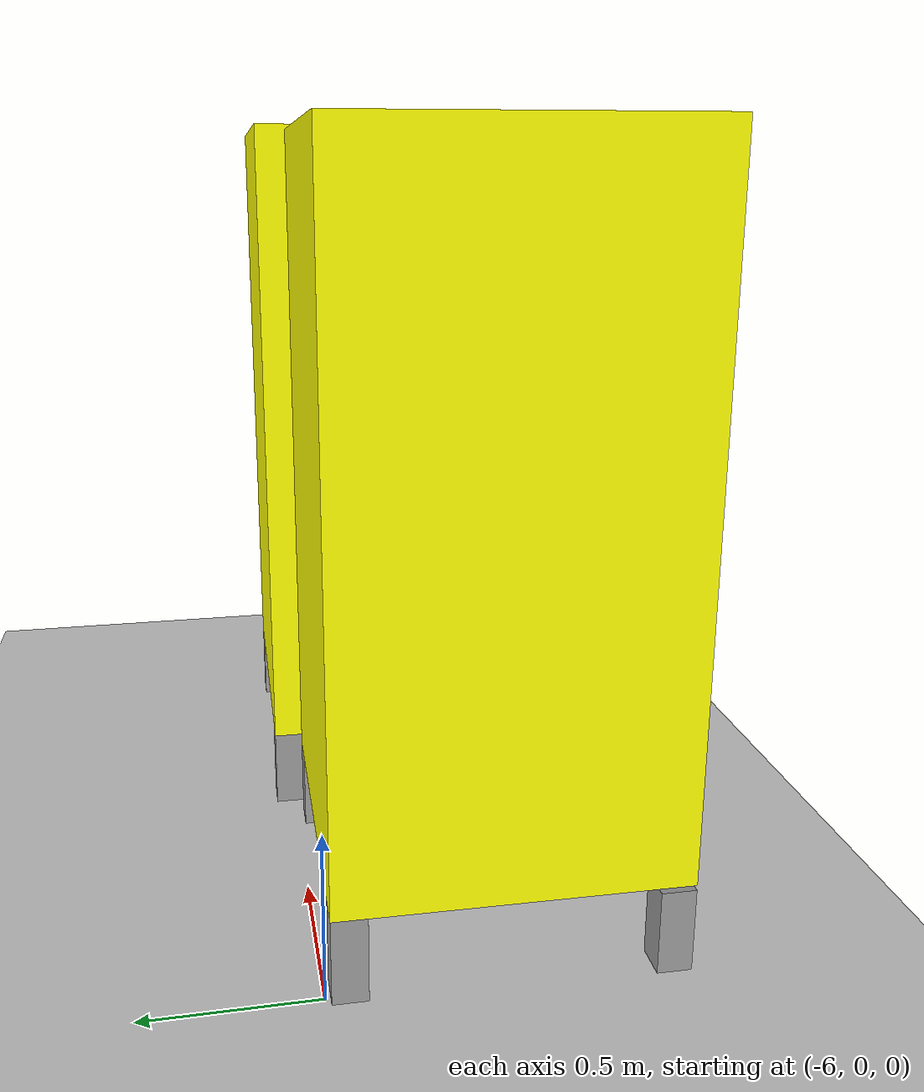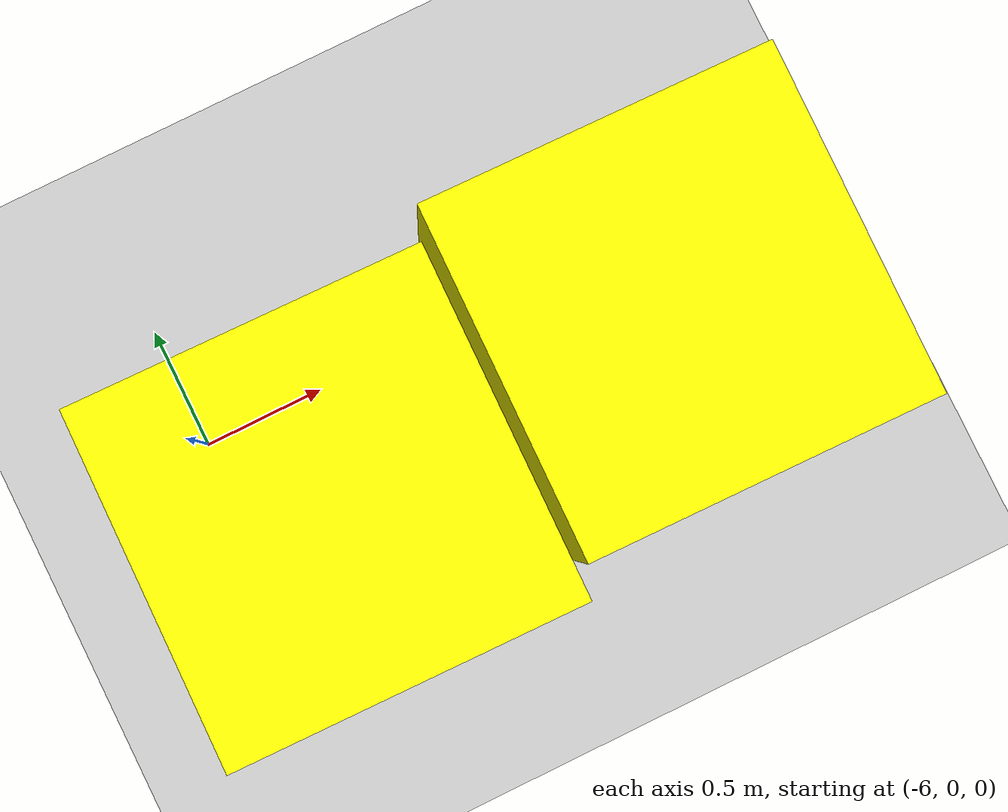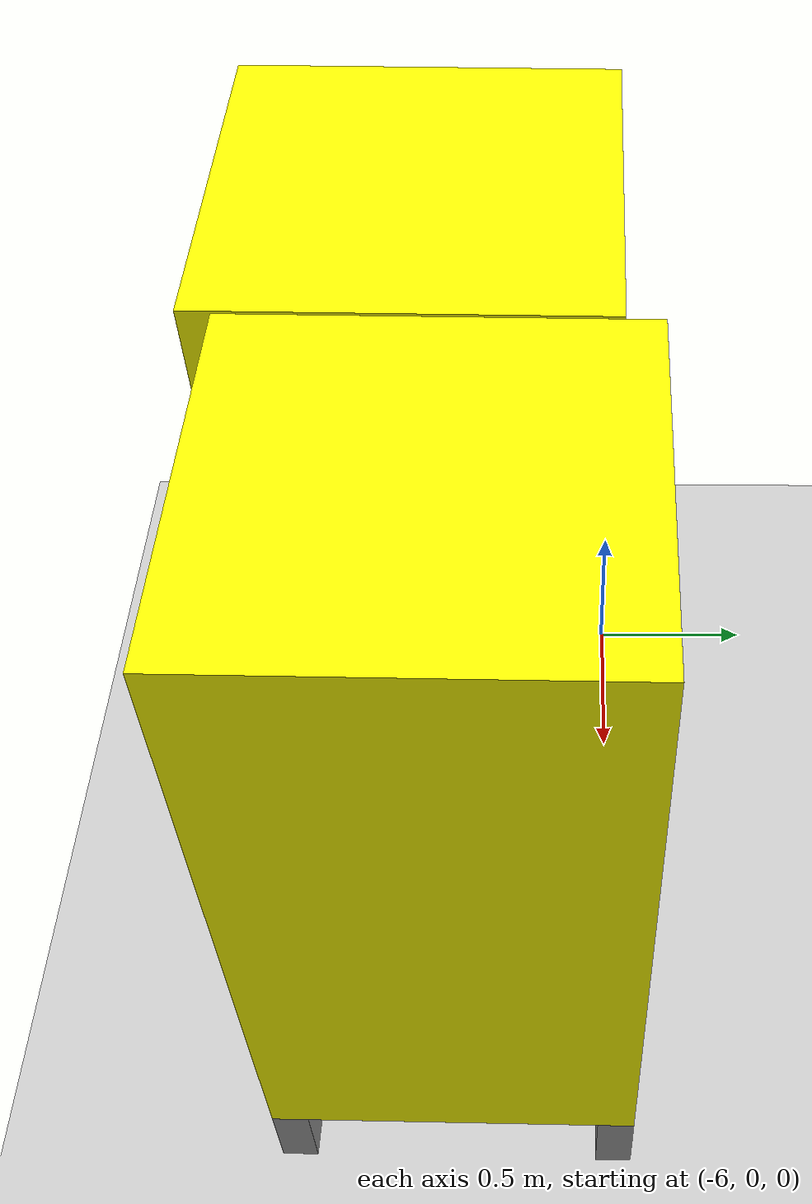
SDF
<sdf version="1.6">
 <world name="default">
  <model name="ground_plane">
   <static>1</static>
   <link name="link">
    <collision name="collision">
     <geometry><plane><normal>0 0 1</normal><size>100 100</size></plane></geometry>
     <surface>
      <contact><collide_bitmask>65535</collide_bitmask></contact>
      <friction><ode><mu>100</mu><mu2>50</mu2></ode></friction>
     </surface>
    </collision>
    <visual name="visual">
     <cast_shadows>0</cast_shadows>
     <geometry><plane><normal>0 0 1</normal><size>100 100</size></plane></geometry>
     <material>
      <script><uri>file://media/materials/scripts/gazebo.material</uri><name>Gazebo/Grey</name></script>
     </material>
    </visual>
   </link>
  </model>
  <model name="StoragePod">
   <link name="link_2">
    <inertial>
     <mass>1</mass>
     <inertia>
      <ixx>0.166667</ixx>
      <ixy>0</ixy>
      <ixz>0</ixz>
      <iyy>0.166667</iyy>
      <iyz>0</iyz>
      <izz>0.166667</izz>
     </inertia>
    </inertial>
    <pose>-0.45 -0.45 -0.237 0 -0 0</pose>
    <visual name="visual">
     <geometry><box><size>0.1 0.1 0.25</size></box></geometry>
     <material>
      <lighting>1</lighting>
      <script><uri>file://media/materials/scripts/gazebo.material</uri><name>Gazebo/Grey</name></script>
      <shader type="pixel"><normal_map>__default__</normal_map></shader>
      <ambient>0.3 0.3 0.3 1</ambient>
      <diffuse>0.7 0.7 0.7 1</diffuse>
      <specular>0.01 0.01 0.01 1</specular>
      <emissive>0 0 0 1</emissive>
     </material>
    </visual>
    <collision name="collision">
     <geometry><box><size>0.1 0.1 0.25</size></box></geometry>
     <surface>
      <friction>
       <ode><mu>1</mu><mu2>1</mu2><fdir1>0 0 0</fdir1><slip1>0</slip1><slip2>0</slip2></ode>
       <torsional>
        <coefficient>1</coefficient>
        <patch_radius>0</patch_radius>
        <surface_radius>0</surface_radius>
        <use_patch_radius>1</use_patch_radius>
        <ode><slip>0</slip></ode>
       </torsional>
      </friction>
      <bounce><restitution_coefficient>0</restitution_coefficient><threshold>1e+06</threshold></bounce>
      <contact>
       <collide_without_contact>0</collide_without_contact>
       <collide_without_contact_bitmask>1</collide_without_contact_bitmask>
       <collide_bitmask>1</collide_bitmask>
       <ode>
        <soft_cfm>0</soft_cfm>
        <soft_erp>0.2</soft_erp>
        <kp>1e+13</kp>
        <kd>1</kd>
        <max_vel>0.01</max_vel>
        <min_depth>0</min_depth>
       </ode>
       <bullet>
        <split_impulse>1</split_impulse>
        <split_impulse_penetration_threshold>-0.01</split_impulse_penetration_threshold>
        <soft_cfm>0</soft_cfm>
        <soft_erp>0.2</soft_erp>
        <kp>1e+13</kp>
        <kd>1</kd>
       </bullet>
      </contact>
     </surface>
    </collision>
   </link>
   <link name="link_2_clone">
    <inertial>
     <mass>1</mass>
     <inertia>
      <ixx>0.166667</ixx>
      <ixy>0</ixy>
      <ixz>0</ixz>
      <iyy>0.166667</iyy>
      <iyz>0</iyz>
      <izz>0.166667</izz>
     </inertia>
    </inertial>
    <pose>0.45 0.45 -0.222 0 -0 0</pose>
    <visual name="visual">
     <geometry><box><size>0.1 0.1 0.25</size></box></geometry>
     <material>
      <lighting>1</lighting>
      <script><uri>file://media/materials/scripts/gazebo.material</uri><name>Gazebo/Grey</name></script>
      <shader type="pixel"><normal_map>__default__</normal_map></shader>
      <ambient>0.3 0.3 0.3 1</ambient>
      <diffuse>0.7 0.7 0.7 1</diffuse>
      <specular>0.01 0.01 0.01 1</specular>
      <emissive>0 0 0 1</emissive>
     </material>
    </visual>
    <collision name="collision">
     <geometry><box><size>0.1 0.1 0.25</size></box></geometry>
     <surface>
      <friction>
       <ode><mu>1</mu><mu2>1</mu2><fdir1>0 0 0</fdir1><slip1>0</slip1><slip2>0</slip2></ode>
       <torsional>
        <coefficient>1</coefficient>
        <patch_radius>0</patch_radius>
        <surface_radius>0</surface_radius>
        <use_patch_radius>1</use_patch_radius>
        <ode><slip>0</slip></ode>
       </torsional>
      </friction>
      <bounce><restitution_coefficient>0</restitution_coefficient><threshold>1e+06</threshold></bounce>
      <contact>
       <collide_without_contact>0</collide_without_contact>
       <collide_without_contact_bitmask>1</collide_without_contact_bitmask>
       <collide_bitmask>1</collide_bitmask>
       <ode>
        <soft_cfm>0</soft_cfm>
        <soft_erp>0.2</soft_erp>
        <kp>1e+13</kp>
        <kd>1</kd>
        <max_vel>0.01</max_vel>
        <min_depth>0</min_depth>
       </ode>
       <bullet>
        <split_impulse>1</split_impulse>
        <split_impulse_penetration_threshold>-0.01</split_impulse_penetration_threshold>
        <soft_cfm>0</soft_cfm>
        <soft_erp>0.2</soft_erp>
        <kp>1e+13</kp>
        <kd>1</kd>
       </bullet>
      </contact>
     </surface>
    </collision>
   </link>
   <link name="link_2_clone_0">
    <inertial>
     <mass>1</mass>
     <inertia>
      <ixx>0.166667</ixx>
      <ixy>0</ixy>
      <ixz>0</ixz>
      <iyy>0.166667</iyy>
      <iyz>0</iyz>
      <izz>0.166667</izz>
     </inertia>
    </inertial>
    <pose>0.45 -0.45 -0.222 0 -0 0</pose>
    <visual name="visual">
     <geometry><box><size>0.1 0.1 0.25</size></box></geometry>
     <material>
      <lighting>1</lighting>
      <script><uri>file://media/materials/scripts/gazebo.material</uri><name>Gazebo/Grey</name></script>
      <shader type="pixel"><normal_map>__default__</normal_map></shader>
      <ambient>0.3 0.3 0.3 1</ambient>
      <diffuse>0.7 0.7 0.7 1</diffuse>
      <specular>0.01 0.01 0.01 1</specular>
      <emissive>0 0 0 1</emissive>
     </material>
    </visual>
    <collision name="collision">
     <geometry><box><size>0.1 0.1 0.25</size></box></geometry>
     <surface>
      <friction>
       <ode><mu>1</mu><mu2>1</mu2><fdir1>0 0 0</fdir1><slip1>0</slip1><slip2>0</slip2></ode>
       <torsional>
        <coefficient>1</coefficient>
        <patch_radius>0</patch_radius>
        <surface_radius>0</surface_radius>
        <use_patch_radius>1</use_patch_radius>
        <ode><slip>0</slip></ode>
       </torsional>
      </friction>
      <bounce><restitution_coefficient>0</restitution_coefficient><threshold>1e+06</threshold></bounce>
      <contact>
       <collide_without_contact>0</collide_without_contact>
       <collide_without_contact_bitmask>1</collide_without_contact_bitmask>
       <collide_bitmask>1</collide_bitmask>
       <ode>
        <soft_cfm>0</soft_cfm>
        <soft_erp>0.2</soft_erp>
        <kp>1e+13</kp>
        <kd>1</kd>
        <max_vel>0.01</max_vel>
        <min_depth>0</min_depth>
       </ode>
       <bullet>
        <split_impulse>1</split_impulse>
        <split_impulse_penetration_threshold>-0.01</split_impulse_penetration_threshold>
        <soft_cfm>0</soft_cfm>
        <soft_erp>0.2</soft_erp>
        <kp>1e+13</kp>
        <kd>1</kd>
       </bullet>
      </contact>
     </surface>
    </collision>
   </link>
   <link name="link_2_clone_1">
    <inertial>
     <mass>1</mass>
     <inertia>
      <ixx>0.166667</ixx>
      <ixy>0</ixy>
      <ixz>0</ixz>
      <iyy>0.166667</iyy>
      <iyz>0</iyz>
      <izz>0.166667</izz>
     </inertia>
    </inertial>
    <pose>-0.45 0.45 -0.222 0 -0 0</pose>
    <visual name="visual">
     <geometry><box><size>0.1 0.1 0.25</size></box></geometry>
     <material>
      <lighting>1</lighting>
      <script><uri>file://media/materials/scripts/gazebo.material</uri><name>Gazebo/Grey</name></script>
      <shader type="pixel"><normal_map>__default__</normal_map></shader>
      <ambient>0.3 0.3 0.3 1</ambient>
      <diffuse>0.7 0.7 0.7 1</diffuse>
      <specular>0.01 0.01 0.01 1</specular>
      <emissive>0 0 0 1</emissive>
     </material>
    </visual>
    <collision name="collision">
     <geometry><box><size>0.1 0.1 0.25</size></box></geometry>
     <surface>
      <friction>
       <ode><mu>1</mu><mu2>1</mu2><fdir1>0 0 0</fdir1><slip1>0</slip1><slip2>0</slip2></ode>
       <torsional>
        <coefficient>1</coefficient>
        <patch_radius>0</patch_radius>
        <surface_radius>0</surface_radius>
        <use_patch_radius>1</use_patch_radius>
        <ode><slip>0</slip></ode>
       </torsional>
      </friction>
      <bounce><restitution_coefficient>0</restitution_coefficient><threshold>1e+06</threshold></bounce>
      <contact>
       <collide_without_contact>0</collide_without_contact>
       <collide_without_contact_bitmask>1</collide_without_contact_bitmask>
       <collide_bitmask>1</collide_bitmask>
       <ode>
        <soft_cfm>0</soft_cfm>
        <soft_erp>0.2</soft_erp>
        <kp>1e+13</kp>
        <kd>1</kd>
        <max_vel>0.01</max_vel>
        <min_depth>0</min_depth>
       </ode>
       <bullet>
        <split_impulse>1</split_impulse>
        <split_impulse_penetration_threshold>-0.01</split_impulse_penetration_threshold>
        <soft_cfm>0</soft_cfm>
        <soft_erp>0.2</soft_erp>
        <kp>1e+13</kp>
        <kd>1</kd>
       </bullet>
      </contact>
     </surface>
    </collision>
   </link>
   <link name="link_3">
    <inertial>
     <mass>1</mass>
     <inertia>
      <ixx>0.166667</ixx>
      <ixy>0</ixy>
      <ixz>0</ixz>
      <iyy>0.166667</iyy>
      <iyz>0</iyz>
      <izz>0.166667</izz>
     </inertia>
    </inertial>
    <pose>0 0 0.903 0 -0 0</pose>
    <visual name="visual">
     <geometry><box><size>1 1 2</size></box></geometry>
     <material>
      <lighting>1</lighting>
      <script><uri>file://media/materials/scripts/gazebo.material</uri><name>Gazebo/Grey</name></script>
      <shader type="pixel"><normal_map>__default__</normal_map></shader>
      <ambient>1 1 0 1</ambient>
      <diffuse>1 1 0 1</diffuse>
      <specular>0.01 0.01 0.01 1</specular>
      <emissive>0 0 0 1</emissive>
     </material>
    </visual>
    <collision name="collision">
     <geometry><box><size>1 1 2</size></box></geometry>
     <surface>
      <friction>
       <ode><mu>1</mu><mu2>1</mu2><fdir1>0 0 0</fdir1><slip1>0</slip1><slip2>0</slip2></ode>
       <torsional>
        <coefficient>1</coefficient>
        <patch_radius>0</patch_radius>
        <surface_radius>0</surface_radius>
        <use_patch_radius>1</use_patch_radius>
        <ode><slip>0</slip></ode>
       </torsional>
      </friction>
      <bounce><restitution_coefficient>0</restitution_coefficient><threshold>1e+06</threshold></bounce>
      <contact>
       <collide_without_contact>0</collide_without_contact>
       <collide_without_contact_bitmask>1</collide_without_contact_bitmask>
       <collide_bitmask>1</collide_bitmask>
       <ode>
        <soft_cfm>0</soft_cfm>
        <soft_erp>0.2</soft_erp>
        <kp>1e+13</kp>
        <kd>1</kd>
        <max_vel>0.01</max_vel>
        <min_depth>0</min_depth>
       </ode>
       <bullet>
        <split_impulse>1</split_impulse>
        <split_impulse_penetration_threshold>-0.01</split_impulse_penetration_threshold>
        <soft_cfm>0</soft_cfm>
        <soft_erp>0.2</soft_erp>
        <kp>1e+13</kp>
        <kd>1</kd>
       </bullet>
      </contact>
     </surface>
    </collision>
   </link>
   <joint name="link_3_JOINT_0" type="fixed">
    <parent>link_3</parent>
    <child>link_2_clone_0</child>
    <physics>
     <ode><limit><cfm>0</cfm><erp>0.2</erp></limit><suspension><cfm>0</cfm><erp>0.2</erp></suspension></ode>
    </physics>
   </joint>
   <joint name="link_3_JOINT_1" type="fixed">
    <parent>link_3</parent>
    <child>link_2</child>
    <physics>
     <ode><limit><cfm>0</cfm><erp>0.2</erp></limit><suspension><cfm>0</cfm><erp>0.2</erp></suspension></ode>
    </physics>
   </joint>
   <joint name="link_3_JOINT_2" type="fixed">
    <parent>link_3</parent>
    <child>link_2_clone</child>
    <physics>
     <ode><limit><cfm>0</cfm><erp>0.2</erp></limit><suspension><cfm>0</cfm><erp>0.2</erp></suspension></ode>
    </physics>
   </joint>
   <joint name="link_3_JOINT_3" type="fixed">
    <parent>link_3</parent>
    <child>link_2_clone_1</child>
    <physics>
     <ode><limit><cfm>0</cfm><erp>0.2</erp></limit><suspension><cfm>0</cfm><erp>0.2</erp></suspension></ode>
    </physics>
   </joint>
   <static>0</static>
   <pose>-5.54359 -0.518532 0.355283 -2e-06 0.016659 -0.013325</pose>
  </model>
  <model name="StoragePod_clone_1">
   <link name="link_2">
    <inertial>
     <mass>1</mass>
     <inertia>
      <ixx>0.166667</ixx>
      <ixy>0</ixy>
      <ixz>0</ixz>
      <iyy>0.166667</iyy>
      <iyz>0</iyz>
      <izz>0.166667</izz>
     </inertia>
    </inertial>
    <pose>-0.45 -0.45 -0.237 0 -0 0</pose>
    <visual name="visual">
     <geometry><box><size>0.1 0.1 0.25</size></box></geometry>
     <material>
      <lighting>1</lighting>
      <script><uri>file://media/materials/scripts/gazebo.material</uri><name>Gazebo/Grey</name></script>
      <shader type="pixel"><normal_map>__default__</normal_map></shader>
      <ambient>0.3 0.3 0.3 1</ambient>
      <diffuse>0.7 0.7 0.7 1</diffuse>
      <specular>0.01 0.01 0.01 1</specular>
      <emissive>0 0 0 1</emissive>
     </material>
    </visual>
    <collision name="collision">
     <geometry><box><size>0.1 0.1 0.25</size></box></geometry>
     <surface>
      <friction>
       <ode><mu>1</mu><mu2>1</mu2><fdir1>0 0 0</fdir1><slip1>0</slip1><slip2>0</slip2></ode>
       <torsional>
        <coefficient>1</coefficient>
        <patch_radius>0</patch_radius>
        <surface_radius>0</surface_radius>
        <use_patch_radius>1</use_patch_radius>
        <ode><slip>0</slip></ode>
       </torsional>
      </friction>
      <bounce><restitution_coefficient>0</restitution_coefficient><threshold>1e+06</threshold></bounce>
      <contact>
       <collide_without_contact>0</collide_without_contact>
       <collide_without_contact_bitmask>1</collide_without_contact_bitmask>
       <collide_bitmask>1</collide_bitmask>
       <ode>
        <soft_cfm>0</soft_cfm>
        <soft_erp>0.2</soft_erp>
        <kp>1e+13</kp>
        <kd>1</kd>
        <max_vel>0.01</max_vel>
        <min_depth>0</min_depth>
       </ode>
       <bullet>
        <split_impulse>1</split_impulse>
        <split_impulse_penetration_threshold>-0.01</split_impulse_penetration_threshold>
        <soft_cfm>0</soft_cfm>
        <soft_erp>0.2</soft_erp>
        <kp>1e+13</kp>
        <kd>1</kd>
       </bullet>
      </contact>
     </surface>
    </collision>
   </link>
   <link name="link_2_clone">
    <inertial>
     <mass>1</mass>
     <inertia>
      <ixx>0.166667</ixx>
      <ixy>0</ixy>
      <ixz>0</ixz>
      <iyy>0.166667</iyy>
      <iyz>0</iyz>
      <izz>0.166667</izz>
     </inertia>
    </inertial>
    <pose>0.45 0.45 -0.222 0 -0 0</pose>
    <visual name="visual">
     <geometry><box><size>0.1 0.1 0.25</size></box></geometry>
     <material>
      <lighting>1</lighting>
      <script><uri>file://media/materials/scripts/gazebo.material</uri><name>Gazebo/Grey</name></script>
      <shader type="pixel"><normal_map>__default__</normal_map></shader>
      <ambient>0.3 0.3 0.3 1</ambient>
      <diffuse>0.7 0.7 0.7 1</diffuse>
      <specular>0.01 0.01 0.01 1</specular>
      <emissive>0 0 0 1</emissive>
     </material>
    </visual>
    <collision name="collision">
     <geometry><box><size>0.1 0.1 0.25</size></box></geometry>
     <surface>
      <friction>
       <ode><mu>1</mu><mu2>1</mu2><fdir1>0 0 0</fdir1><slip1>0</slip1><slip2>0</slip2></ode>
       <torsional>
        <coefficient>1</coefficient>
        <patch_radius>0</patch_radius>
        <surface_radius>0</surface_radius>
        <use_patch_radius>1</use_patch_radius>
        <ode><slip>0</slip></ode>
       </torsional>
      </friction>
      <bounce><restitution_coefficient>0</restitution_coefficient><threshold>1e+06</threshold></bounce>
      <contact>
       <collide_without_contact>0</collide_without_contact>
       <collide_without_contact_bitmask>1</collide_without_contact_bitmask>
       <collide_bitmask>1</collide_bitmask>
       <ode>
        <soft_cfm>0</soft_cfm>
        <soft_erp>0.2</soft_erp>
        <kp>1e+13</kp>
        <kd>1</kd>
        <max_vel>0.01</max_vel>
        <min_depth>0</min_depth>
       </ode>
       <bullet>
        <split_impulse>1</split_impulse>
        <split_impulse_penetration_threshold>-0.01</split_impulse_penetration_threshold>
        <soft_cfm>0</soft_cfm>
        <soft_erp>0.2</soft_erp>
        <kp>1e+13</kp>
        <kd>1</kd>
       </bullet>
      </contact>
     </surface>
    </collision>
   </link>
   <link name="link_2_clone_0">
    <inertial>
     <mass>1</mass>
     <inertia>
      <ixx>0.166667</ixx>
      <ixy>0</ixy>
      <ixz>0</ixz>
      <iyy>0.166667</iyy>
      <iyz>0</iyz>
      <izz>0.166667</izz>
     </inertia>
    </inertial>
    <pose>0.45 -0.45 -0.222 0 -0 0</pose>
    <visual name="visual">
     <geometry><box><size>0.1 0.1 0.25</size></box></geometry>
     <material>
      <lighting>1</lighting>
      <script><uri>file://media/materials/scripts/gazebo.material</uri><name>Gazebo/Grey</name></script>
      <shader type="pixel"><normal_map>__default__</normal_map></shader>
      <ambient>0.3 0.3 0.3 1</ambient>
      <diffuse>0.7 0.7 0.7 1</diffuse>
      <specular>0.01 0.01 0.01 1</specular>
      <emissive>0 0 0 1</emissive>
     </material>
    </visual>
    <collision name="collision">
     <geometry><box><size>0.1 0.1 0.25</size></box></geometry>
     <surface>
      <friction>
       <ode><mu>1</mu><mu2>1</mu2><fdir1>0 0 0</fdir1><slip1>0</slip1><slip2>0</slip2></ode>
       <torsional>
        <coefficient>1</coefficient>
        <patch_radius>0</patch_radius>
        <surface_radius>0</surface_radius>
        <use_patch_radius>1</use_patch_radius>
        <ode><slip>0</slip></ode>
       </torsional>
      </friction>
      <bounce><restitution_coefficient>0</restitution_coefficient><threshold>1e+06</threshold></bounce>
      <contact>
       <collide_without_contact>0</collide_without_contact>
       <collide_without_contact_bitmask>1</collide_without_contact_bitmask>
       <collide_bitmask>1</collide_bitmask>
       <ode>
        <soft_cfm>0</soft_cfm>
        <soft_erp>0.2</soft_erp>
        <kp>1e+13</kp>
        <kd>1</kd>
        <max_vel>0.01</max_vel>
        <min_depth>0</min_depth>
       </ode>
       <bullet>
        <split_impulse>1</split_impulse>
        <split_impulse_penetration_threshold>-0.01</split_impulse_penetration_threshold>
        <soft_cfm>0</soft_cfm>
        <soft_erp>0.2</soft_erp>
        <kp>1e+13</kp>
        <kd>1</kd>
       </bullet>
      </contact>
     </surface>
    </collision>
   </link>
   <link name="link_2_clone_1">
    <inertial>
     <mass>1</mass>
     <inertia>
      <ixx>0.166667</ixx>
      <ixy>0</ixy>
      <ixz>0</ixz>
      <iyy>0.166667</iyy>
      <iyz>0</iyz>
      <izz>0.166667</izz>
     </inertia>
    </inertial>
    <pose>-0.45 0.45 -0.222 0 -0 0</pose>
    <visual name="visual">
     <geometry><box><size>0.1 0.1 0.25</size></box></geometry>
     <material>
      <lighting>1</lighting>
      <script><uri>file://media/materials/scripts/gazebo.material</uri><name>Gazebo/Grey</name></script>
      <shader type="pixel"><normal_map>__default__</normal_map></shader>
      <ambient>0.3 0.3 0.3 1</ambient>
      <diffuse>0.7 0.7 0.7 1</diffuse>
      <specular>0.01 0.01 0.01 1</specular>
      <emissive>0 0 0 1</emissive>
     </material>
    </visual>
    <collision name="collision">
     <geometry><box><size>0.1 0.1 0.25</size></box></geometry>
     <surface>
      <friction>
       <ode><mu>1</mu><mu2>1</mu2><fdir1>0 0 0</fdir1><slip1>0</slip1><slip2>0</slip2></ode>
       <torsional>
        <coefficient>1</coefficient>
        <patch_radius>0</patch_radius>
        <surface_radius>0</surface_radius>
        <use_patch_radius>1</use_patch_radius>
        <ode><slip>0</slip></ode>
       </torsional>
      </friction>
      <bounce><restitution_coefficient>0</restitution_coefficient><threshold>1e+06</threshold></bounce>
      <contact>
       <collide_without_contact>0</collide_without_contact>
       <collide_without_contact_bitmask>1</collide_without_contact_bitmask>
       <collide_bitmask>1</collide_bitmask>
       <ode>
        <soft_cfm>0</soft_cfm>
        <soft_erp>0.2</soft_erp>
        <kp>1e+13</kp>
        <kd>1</kd>
        <max_vel>0.01</max_vel>
        <min_depth>0</min_depth>
       </ode>
       <bullet>
        <split_impulse>1</split_impulse>
        <split_impulse_penetration_threshold>-0.01</split_impulse_penetration_threshold>
        <soft_cfm>0</soft_cfm>
        <soft_erp>0.2</soft_erp>
        <kp>1e+13</kp>
        <kd>1</kd>
       </bullet>
      </contact>
     </surface>
    </collision>
   </link>
   <link name="link_3">
    <inertial>
     <mass>1</mass>
     <inertia>
      <ixx>0.166667</ixx>
      <ixy>0</ixy>
      <ixz>0</ixz>
      <iyy>0.166667</iyy>
      <iyz>0</iyz>
      <izz>0.166667</izz>
     </inertia>
    </inertial>
    <pose>0 0 0.903 0 -0 0</pose>
    <visual name="visual">
     <geometry><box><size>1 1 2</size></box></geometry>
     <material>
      <lighting>1</lighting>
      <script><uri>file://media/materials/scripts/gazebo.material</uri><name>Gazebo/Grey</name></script>
      <shader type="pixel"><normal_map>__default__</normal_map></shader>
      <ambient>1 1 0 1</ambient>
      <diffuse>1 1 0 1</diffuse>
      <specular>0.01 0.01 0.01 1</specular>
      <emissive>0 0 0 1</emissive>
     </material>
    </visual>
    <collision name="collision">
     <geometry><box><size>1 1 2</size></box></geometry>
     <surface>
      <friction>
       <ode><mu>1</mu><mu2>1</mu2><fdir1>0 0 0</fdir1><slip1>0</slip1><slip2>0</slip2></ode>
       <torsional>
        <coefficient>1</coefficient>
        <patch_radius>0</patch_radius>
        <surface_radius>0</surface_radius>
        <use_patch_radius>1</use_patch_radius>
        <ode><slip>0</slip></ode>
       </torsional>
      </friction>
      <bounce><restitution_coefficient>0</restitution_coefficient><threshold>1e+06</threshold></bounce>
      <contact>
       <collide_without_contact>0</collide_without_contact>
       <collide_without_contact_bitmask>1</collide_without_contact_bitmask>
       <collide_bitmask>1</collide_bitmask>
       <ode>
        <soft_cfm>0</soft_cfm>
        <soft_erp>0.2</soft_erp>
        <kp>1e+13</kp>
        <kd>1</kd>
        <max_vel>0.01</max_vel>
        <min_depth>0</min_depth>
       </ode>
       <bullet>
        <split_impulse>1</split_impulse>
        <split_impulse_penetration_threshold>-0.01</split_impulse_penetration_threshold>
        <soft_cfm>0</soft_cfm>
        <soft_erp>0.2</soft_erp>
        <kp>1e+13</kp>
        <kd>1</kd>
       </bullet>
      </contact>
     </surface>
    </collision>
   </link>
   <joint name="link_3_JOINT_0" type="fixed">
    <parent>link_3</parent>
    <child>link_2_clone_0</child>
    <physics>
     <ode><limit><cfm>0</cfm><erp>0.2</erp></limit><suspension><cfm>0</cfm><erp>0.2</erp></suspension></ode>
    </physics>
   </joint>
   <joint name="link_3_JOINT_1" type="fixed">
    <parent>link_3</parent>
    <child>link_2</child>
    <physics>
     <ode><limit><cfm>0</cfm><erp>0.2</erp></limit><suspension><cfm>0</cfm><erp>0.2</erp></suspension></ode>
    </physics>
   </joint>
   <joint name="link_3_JOINT_2" type="fixed">
    <parent>link_3</parent>
    <child>link_2_clone</child>
    <physics>
     <ode><limit><cfm>0</cfm><erp>0.2</erp></limit><suspension><cfm>0</cfm><erp>0.2</erp></suspension></ode>
    </physics>
   </joint>
   <joint name="link_3_JOINT_3" type="fixed">
    <parent>link_3</parent>
    <child>link_2_clone_1</child>
    <physics>
     <ode><limit><cfm>0</cfm><erp>0.2</erp></limit><suspension><cfm>0</cfm><erp>0.2</erp></suspension></ode>
    </physics>
   </joint>
   <static>0</static>
   <pose>-4.51276 -0.444005 0.355286 -0.000285 0.01638 -0.012795</pose>
  </model>
 </world>
</sdf>
